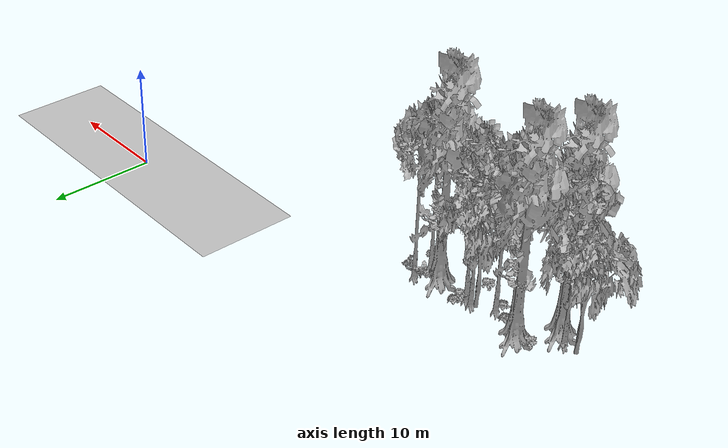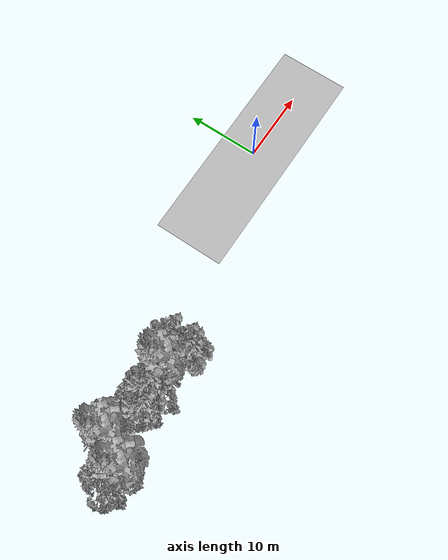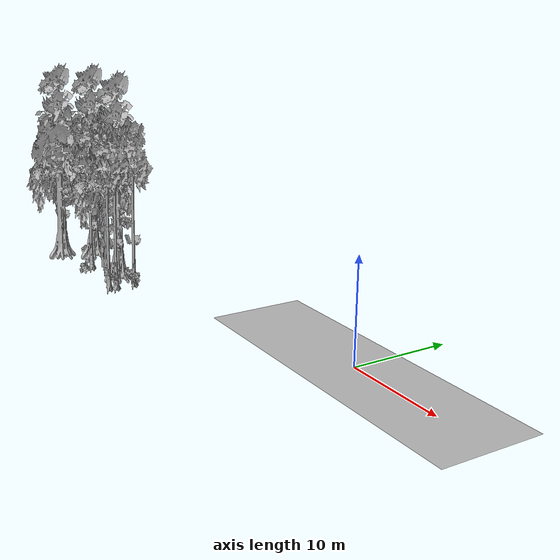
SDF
<sdf version="1.7">
 <world name="default">
  <model name="ground_plane">
   <static>1</static>
   <link name="link">
    <collision name="collision">
     <geometry><plane><normal>0 0 1</normal><size>100 100</size></plane></geometry>
     <surface><contact><ode><min_depth>0.01</min_depth><max_vel>0</max_vel></ode></contact></surface>
    </collision>
    <visual name="grass">
     <cast_shadows>0</cast_shadows>
     <geometry>
      <mesh>
       <scale>0.5814285714285714 0.18142857142857144 0.1</scale>
       <uri>file://grass_plane/meshes/grass_plane.dae</uri>
      </mesh>
     </geometry>
    </visual>
   </link>
  </model>
  <model name="Tree 83">
   <static>1</static>
   <pose>-34.98024696118149 -8.194769852355048 0 1.57079 -0 0</pose>
   <link name="link">
    <collision name="collision">
     <geometry><mesh><scale>3.5 5 3.5</scale><uri>model://tree_9/meshes/tree_9.obj</uri></mesh></geometry>
    </collision>
    <visual name="visual">
     <geometry><mesh><scale>3.5 5 3.5</scale><uri>model://tree_9/meshes/tree_9.obj</uri></mesh></geometry>
    </visual>
   </link>
  </model>
  <model name="Tree 105">
   <static>1</static>
   <pose>-42.521557331629786 -10.626982892843378 0 1.57079 -0 0</pose>
   <link name="link">
    <collision name="collision">
     <geometry><mesh><scale>3.5 5 3.5</scale><uri>model://tree_4/meshes/tree_4.obj</uri></mesh></geometry>
    </collision>
    <visual name="visual">
     <geometry><mesh><scale>3.5 5 3.5</scale><uri>model://tree_4/meshes/tree_4.obj</uri></mesh></geometry>
    </visual>
   </link>
  </model>
  <model name="Tree 232">
   <static>1</static>
   <pose>-44.720893514083166 -10.155116810078944 0 1.57079 -0 0</pose>
   <link name="link">
    <collision name="collision">
     <geometry><mesh><scale>3.5 5 3.5</scale><uri>model://tree_2/meshes/tree_2.obj</uri></mesh></geometry>
    </collision>
    <visual name="visual">
     <geometry><mesh><scale>3.5 5 3.5</scale><uri>model://tree_2/meshes/tree_2.obj</uri></mesh></geometry>
    </visual>
   </link>
  </model>
  <model name="Tree 248">
   <static>1</static>
   <pose>-29.266672817282053 -10.190441907769625 0 1.57079 -0 0</pose>
   <link name="link">
    <collision name="collision">
     <geometry><mesh><scale>3.5 5 3.5</scale><uri>model://tree_9/meshes/tree_9.obj</uri></mesh></geometry>
    </collision>
    <visual name="visual">
     <geometry><mesh><scale>3.5 5 3.5</scale><uri>model://tree_9/meshes/tree_9.obj</uri></mesh></geometry>
    </visual>
   </link>
  </model>
  <model name="Tree 264">
   <static>1</static>
   <pose>-36.87825588035123 -9.156446469059869 0 1.57079 -0 0</pose>
   <link name="link">
    <collision name="collision">
     <geometry><mesh><scale>3.5 5 3.5</scale><uri>model://tree_9/meshes/tree_9.obj</uri></mesh></geometry>
    </collision>
    <visual name="visual">
     <geometry><mesh><scale>3.5 5 3.5</scale><uri>model://tree_9/meshes/tree_9.obj</uri></mesh></geometry>
    </visual>
   </link>
  </model>
  <model name="Tree 301">
   <static>1</static>
   <pose>-35.57051780822058 -8.315525738838371 0 1.57079 -0 0</pose>
   <link name="link">
    <collision name="collision">
     <geometry><mesh><scale>3.5 5 3.5</scale><uri>model://tree_2/meshes/tree_2.obj</uri></mesh></geometry>
    </collision>
    <visual name="visual">
     <geometry><mesh><scale>3.5 5 3.5</scale><uri>model://tree_2/meshes/tree_2.obj</uri></mesh></geometry>
    </visual>
   </link>
  </model>
  <model name="Tree 305">
   <static>1</static>
   <pose>-29.06828411374936 -9.42698842128495 0 1.57079 -0 0</pose>
   <link name="link">
    <collision name="collision">
     <geometry><mesh><scale>3.5 5 3.5</scale><uri>model://tree_9/meshes/tree_9.obj</uri></mesh></geometry>
    </collision>
    <visual name="visual">
     <geometry><mesh><scale>3.5 5 3.5</scale><uri>model://tree_9/meshes/tree_9.obj</uri></mesh></geometry>
    </visual>
   </link>
  </model>
  <model name="Tree 323">
   <static>1</static>
   <pose>-34.30739801887991 -8.343444614276425 0 1.57079 -0 0</pose>
   <link name="link">
    <collision name="collision">
     <geometry><mesh><scale>3.5 5 3.5</scale><uri>model://tree_9/meshes/tree_9.obj</uri></mesh></geometry>
    </collision>
    <visual name="visual">
     <geometry><mesh><scale>3.5 5 3.5</scale><uri>model://tree_9/meshes/tree_9.obj</uri></mesh></geometry>
    </visual>
   </link>
  </model>
  <model name="Tree 324">
   <static>1</static>
   <pose>-29.236429227350094 -7.279344109858159 0 1.57079 -0 0</pose>
   <link name="link">
    <collision name="collision">
     <geometry><mesh><scale>3.5 5 3.5</scale><uri>model://tree_9/meshes/tree_9.obj</uri></mesh></geometry>
    </collision>
    <visual name="visual">
     <geometry><mesh><scale>3.5 5 3.5</scale><uri>model://tree_9/meshes/tree_9.obj</uri></mesh></geometry>
    </visual>
   </link>
  </model>
  <model name="Tree 372">
   <static>1</static>
   <pose>-40.612178228452215 -7.361343114616295 0 1.57079 -0 0</pose>
   <link name="link">
    <collision name="collision">
     <geometry><mesh><scale>3.5 5 3.5</scale><uri>model://tree_4/meshes/tree_4.obj</uri></mesh></geometry>
    </collision>
    <visual name="visual">
     <geometry><mesh><scale>3.5 5 3.5</scale><uri>model://tree_4/meshes/tree_4.obj</uri></mesh></geometry>
    </visual>
   </link>
  </model>
  <model name="Tree 380">
   <static>1</static>
   <pose>-31.376074779610942 -8.127652116969502 0 1.57079 -0 0</pose>
   <link name="link">
    <collision name="collision">
     <geometry><mesh><scale>3.5 5 3.5</scale><uri>model://tree_4/meshes/tree_4.obj</uri></mesh></geometry>
    </collision>
    <visual name="visual">
     <geometry><mesh><scale>3.5 5 3.5</scale><uri>model://tree_4/meshes/tree_4.obj</uri></mesh></geometry>
    </visual>
   </link>
  </model>
  <model name="Tree 434">
   <static>1</static>
   <pose>-43.291636166487905 -10.19574639141158 0 1.57079 -0 0</pose>
   <link name="link">
    <collision name="collision">
     <geometry><mesh><scale>3.5 5 3.5</scale><uri>model://tree_9/meshes/tree_9.obj</uri></mesh></geometry>
    </collision>
    <visual name="visual">
     <geometry><mesh><scale>3.5 5 3.5</scale><uri>model://tree_9/meshes/tree_9.obj</uri></mesh></geometry>
    </visual>
   </link>
  </model>
  <model name="Bush 54">
   <static>1</static>
   <pose>-29.782431683694856 -7.46589617809507 0 1.57079 -0 0</pose>
   <link name="link">
    <collision name="collision">
     <geometry><mesh><scale>2 2 2</scale><uri>model://bush_0/meshes/bush_0.obj</uri></mesh></geometry>
     <surface><contact><collide_without_contact>false</collide_without_contact></contact></surface>
    </collision>
    <visual name="visual">
     <geometry><mesh><scale>2 2 2</scale><uri>model://bush_0/meshes/bush_0.obj</uri></mesh></geometry>
    </visual>
   </link>
  </model>
  <model name="Bush 79">
   <static>1</static>
   <pose>-38.1223730196012 -9.048883106497355 0 1.57079 -0 0</pose>
   <link name="link">
    <collision name="collision">
     <geometry><mesh><scale>2 2 2</scale><uri>model://bush_2/meshes/bush_2.obj</uri></mesh></geometry>
     <surface><contact><collide_without_contact>false</collide_without_contact></contact></surface>
    </collision>
    <visual name="visual">
     <geometry><mesh><scale>2 2 2</scale><uri>model://bush_2/meshes/bush_2.obj</uri></mesh></geometry>
    </visual>
   </link>
  </model>
  <model name="Bush 92">
   <static>1</static>
   <pose>-33.726501202491065 -7.563066086346375 0 1.57079 -0 0</pose>
   <link name="link">
    <collision name="collision">
     <geometry><mesh><scale>2 2 2</scale><uri>model://bush_2/meshes/bush_2.obj</uri></mesh></geometry>
     <surface><contact><collide_without_contact>false</collide_without_contact></contact></surface>
    </collision>
    <visual name="visual">
     <geometry><mesh><scale>2 2 2</scale><uri>model://bush_2/meshes/bush_2.obj</uri></mesh></geometry>
    </visual>
   </link>
  </model>
  <model name="Bush 101">
   <static>1</static>
   <pose>-33.861607067229926 -8.037537830181371 0 1.57079 -0 0</pose>
   <link name="link">
    <collision name="collision">
     <geometry><mesh><scale>2 2 2</scale><uri>model://bush_3/meshes/bush_3.obj</uri></mesh></geometry>
     <surface><contact><collide_without_contact>false</collide_without_contact></contact></surface>
    </collision>
    <visual name="visual">
     <geometry><mesh><scale>2 2 2</scale><uri>model://bush_3/meshes/bush_3.obj</uri></mesh></geometry>
    </visual>
   </link>
  </model>
  <model name="Bush 102">
   <static>1</static>
   <pose>-41.600482950913225 -7.910412536836899 0 1.57079 -0 0</pose>
   <link name="link">
    <collision name="collision">
     <geometry><mesh><scale>2 2 2</scale><uri>model://bush_3/meshes/bush_3.obj</uri></mesh></geometry>
     <surface><contact><collide_without_contact>false</collide_without_contact></contact></surface>
    </collision>
    <visual name="visual">
     <geometry><mesh><scale>2 2 2</scale><uri>model://bush_3/meshes/bush_3.obj</uri></mesh></geometry>
    </visual>
   </link>
  </model>
  <model name="Bush 233">
   <static>1</static>
   <pose>-28.823380494184864 -9.609828555744144 0 1.57079 -0 0</pose>
   <link name="link">
    <collision name="collision">
     <geometry><mesh><scale>2 2 2</scale><uri>model://bush_5/meshes/bush_5.obj</uri></mesh></geometry>
     <surface><contact><collide_without_contact>false</collide_without_contact></contact></surface>
    </collision>
    <visual name="visual">
     <geometry><mesh><scale>2 2 2</scale><uri>model://bush_5/meshes/bush_5.obj</uri></mesh></geometry>
    </visual>
   </link>
  </model>
  <model name="Bush 248">
   <static>1</static>
   <pose>-36.84789441692629 -10.141215951174246 0 1.57079 -0 0</pose>
   <link name="link">
    <collision name="collision">
     <geometry><mesh><scale>2 2 2</scale><uri>model://bush_2/meshes/bush_2.obj</uri></mesh></geometry>
     <surface><contact><collide_without_contact>false</collide_without_contact></contact></surface>
    </collision>
    <visual name="visual">
     <geometry><mesh><scale>2 2 2</scale><uri>model://bush_2/meshes/bush_2.obj</uri></mesh></geometry>
    </visual>
   </link>
  </model>
  <model name="Bush 257">
   <static>1</static>
   <pose>-30.733137448173807 -8.355193847866381 0 1.57079 -0 0</pose>
   <link name="link">
    <collision name="collision">
     <geometry><mesh><scale>2 2 2</scale><uri>model://bush_4/meshes/bush_4.obj</uri></mesh></geometry>
     <surface><contact><collide_without_contact>false</collide_without_contact></contact></surface>
    </collision>
    <visual name="visual">
     <geometry><mesh><scale>2 2 2</scale><uri>model://bush_4/meshes/bush_4.obj</uri></mesh></geometry>
    </visual>
   </link>
  </model>
  <model name="Bush 261">
   <static>1</static>
   <pose>-28.46371871135128 -7.6118213355004025 0 1.57079 -0 0</pose>
   <link name="link">
    <collision name="collision">
     <geometry><mesh><scale>2 2 2</scale><uri>model://bush_4/meshes/bush_4.obj</uri></mesh></geometry>
     <surface><contact><collide_without_contact>false</collide_without_contact></contact></surface>
    </collision>
    <visual name="visual">
     <geometry><mesh><scale>2 2 2</scale><uri>model://bush_4/meshes/bush_4.obj</uri></mesh></geometry>
    </visual>
   </link>
  </model>
  <model name="Bush 316">
   <static>1</static>
   <pose>-34.29120757630236 -10.876403879315482 0 1.57079 -0 0</pose>
   <link name="link">
    <collision name="collision">
     <geometry><mesh><scale>2 2 2</scale><uri>model://bush_3/meshes/bush_3.obj</uri></mesh></geometry>
     <surface><contact><collide_without_contact>false</collide_without_contact></contact></surface>
    </collision>
    <visual name="visual">
     <geometry><mesh><scale>2 2 2</scale><uri>model://bush_3/meshes/bush_3.obj</uri></mesh></geometry>
    </visual>
   </link>
  </model>
 </world>
</sdf>
